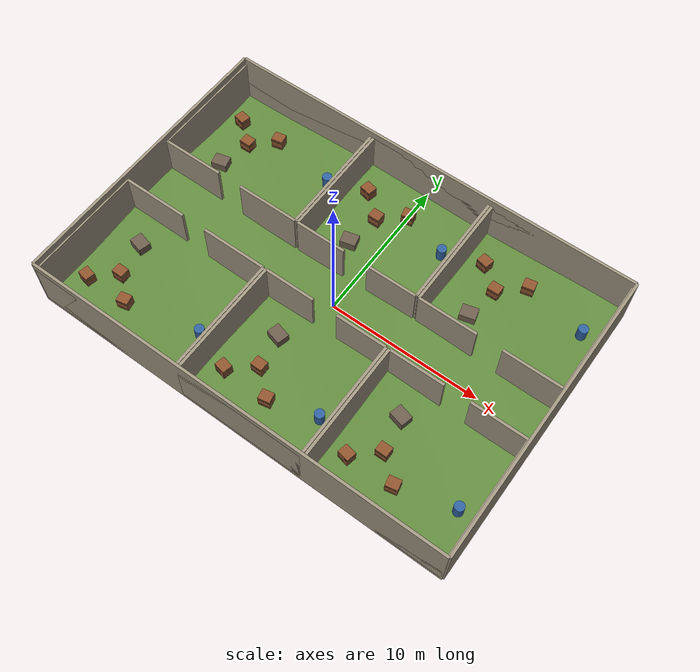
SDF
<sdf version="1.7">
 <world name="terrain_M3">
  <model name="terrain_M3_structure">
   <static>true</static>
   <link name="structure">
    <collision name="terrain_surface_collision">
     <geometry><mesh><uri>3DModel/unseen/M3/terrain_surface.stl</uri></mesh></geometry>
     <max_contacts>40</max_contacts>
     <surface>
      <friction><ode><mu>8</mu><mu2>8</mu2></ode></friction>
      <contact><ode><kp>1e7</kp><kd>1000</kd><max_vel>0.1</max_vel><min_depth>0.001</min_depth></ode></contact>
     </surface>
    </collision>
    <visual name="terrain_surface_visual">
     <geometry><mesh><uri>3DModel/unseen/M3/terrain_surface.stl</uri></mesh></geometry>
     <material><ambient>0.38 0.54 0.24 1</ambient><diffuse>0.38 0.54 0.24 1</diffuse></material>
    </visual>
    <collision name="outer_south_wall_0_collision">
     <pose>0 -9.5 1.85 0 0 0</pose>
     <geometry><box><size>28 0.18 3.9</size></box></geometry>
     <max_contacts>40</max_contacts>
     <surface>
      <friction><ode><mu>2</mu><mu2>2</mu2></ode></friction>
      <contact><ode><kp>1e7</kp><kd>1000</kd><max_vel>0.1</max_vel><min_depth>0.001</min_depth></ode></contact>
     </surface>
    </collision>
    <visual name="outer_south_wall_0_visual">
     <pose>0 -9.5 1.85 0 0 0</pose>
     <geometry><box><size>28 0.18 3.9</size></box></geometry>
     <material><ambient>0.62 0.58 0.50 1</ambient><diffuse>0.62 0.58 0.50 1</diffuse></material>
    </visual>
    <collision name="outer_north_wall_0_collision">
     <pose>0 9.5 1.85 0 0 0</pose>
     <geometry><box><size>28 0.18 3.9</size></box></geometry>
     <max_contacts>40</max_contacts>
     <surface>
      <friction><ode><mu>2</mu><mu2>2</mu2></ode></friction>
      <contact><ode><kp>1e7</kp><kd>1000</kd><max_vel>0.1</max_vel><min_depth>0.001</min_depth></ode></contact>
     </surface>
    </collision>
    <visual name="outer_north_wall_0_visual">
     <pose>0 9.5 1.85 0 0 0</pose>
     <geometry><box><size>28 0.18 3.9</size></box></geometry>
     <material><ambient>0.62 0.58 0.50 1</ambient><diffuse>0.62 0.58 0.50 1</diffuse></material>
    </visual>
    <collision name="outer_west_wall_0_collision">
     <pose>-14 0 1.85 0 0 1.57079633</pose>
     <geometry><box><size>19 0.18 3.9</size></box></geometry>
     <max_contacts>40</max_contacts>
     <surface>
      <friction><ode><mu>2</mu><mu2>2</mu2></ode></friction>
      <contact><ode><kp>1e7</kp><kd>1000</kd><max_vel>0.1</max_vel><min_depth>0.001</min_depth></ode></contact>
     </surface>
    </collision>
    <visual name="outer_west_wall_0_visual">
     <pose>-14 0 1.85 0 0 1.57079633</pose>
     <geometry><box><size>19 0.18 3.9</size></box></geometry>
     <material><ambient>0.62 0.58 0.50 1</ambient><diffuse>0.62 0.58 0.50 1</diffuse></material>
    </visual>
    <collision name="outer_east_wall_0_collision">
     <pose>14 0 1.85 0 0 1.57079633</pose>
     <geometry><box><size>19 0.18 3.9</size></box></geometry>
     <max_contacts>40</max_contacts>
     <surface>
      <friction><ode><mu>2</mu><mu2>2</mu2></ode></friction>
      <contact><ode><kp>1e7</kp><kd>1000</kd><max_vel>0.1</max_vel><min_depth>0.001</min_depth></ode></contact>
     </surface>
    </collision>
    <visual name="outer_east_wall_0_visual">
     <pose>14 0 1.85 0 0 1.57079633</pose>
     <geometry><box><size>19 0.18 3.9</size></box></geometry>
     <material><ambient>0.62 0.58 0.50 1</ambient><diffuse>0.62 0.58 0.50 1</diffuse></material>
    </visual>
    <collision name="terrain_room_1_0_south_wall_0_collision">
     <pose>-11.8625 1.8 1.745 0 0 0</pose>
     <geometry><box><size>4.075 0.18 3.15</size></box></geometry>
     <max_contacts>40</max_contacts>
     <surface>
      <friction><ode><mu>2</mu><mu2>2</mu2></ode></friction>
      <contact><ode><kp>1e7</kp><kd>1000</kd><max_vel>0.1</max_vel><min_depth>0.001</min_depth></ode></contact>
     </surface>
    </collision>
    <visual name="terrain_room_1_0_south_wall_0_visual">
     <pose>-11.8625 1.8 1.745 0 0 0</pose>
     <geometry><box><size>4.075 0.18 3.15</size></box></geometry>
     <material><ambient>0.62 0.58 0.50 1</ambient><diffuse>0.62 0.58 0.50 1</diffuse></material>
    </visual>
    <collision name="terrain_room_1_0_south_wall_1_collision">
     <pose>-6.1375 1.8 1.745 0 0 0</pose>
     <geometry><box><size>4.075 0.18 3.15</size></box></geometry>
     <max_contacts>40</max_contacts>
     <surface>
      <friction><ode><mu>2</mu><mu2>2</mu2></ode></friction>
      <contact><ode><kp>1e7</kp><kd>1000</kd><max_vel>0.1</max_vel><min_depth>0.001</min_depth></ode></contact>
     </surface>
    </collision>
    <visual name="terrain_room_1_0_south_wall_1_visual">
     <pose>-6.1375 1.8 1.745 0 0 0</pose>
     <geometry><box><size>4.075 0.18 3.15</size></box></geometry>
     <material><ambient>0.62 0.58 0.50 1</ambient><diffuse>0.62 0.58 0.50 1</diffuse></material>
    </visual>
    <collision name="terrain_room_1_0_north_wall_0_collision">
     <pose>-9 9.5 1.745 0 0 0</pose>
     <geometry><box><size>9.8 0.18 3.15</size></box></geometry>
     <max_contacts>40</max_contacts>
     <surface>
      <friction><ode><mu>2</mu><mu2>2</mu2></ode></friction>
      <contact><ode><kp>1e7</kp><kd>1000</kd><max_vel>0.1</max_vel><min_depth>0.001</min_depth></ode></contact>
     </surface>
    </collision>
    <visual name="terrain_room_1_0_north_wall_0_visual">
     <pose>-9 9.5 1.745 0 0 0</pose>
     <geometry><box><size>9.8 0.18 3.15</size></box></geometry>
     <material><ambient>0.62 0.58 0.50 1</ambient><diffuse>0.62 0.58 0.50 1</diffuse></material>
    </visual>
    <collision name="terrain_room_1_0_west_wall_0_collision">
     <pose>-13.9 5.65 1.745 0 0 1.57079633</pose>
     <geometry><box><size>7.7 0.18 3.15</size></box></geometry>
     <max_contacts>40</max_contacts>
     <surface>
      <friction><ode><mu>2</mu><mu2>2</mu2></ode></friction>
      <contact><ode><kp>1e7</kp><kd>1000</kd><max_vel>0.1</max_vel><min_depth>0.001</min_depth></ode></contact>
     </surface>
    </collision>
    <visual name="terrain_room_1_0_west_wall_0_visual">
     <pose>-13.9 5.65 1.745 0 0 1.57079633</pose>
     <geometry><box><size>7.7 0.18 3.15</size></box></geometry>
     <material><ambient>0.62 0.58 0.50 1</ambient><diffuse>0.62 0.58 0.50 1</diffuse></material>
    </visual>
    <collision name="terrain_room_1_0_east_wall_0_collision">
     <pose>-4.1 5.65 1.745 0 0 1.57079633</pose>
     <geometry><box><size>7.7 0.18 3.15</size></box></geometry>
     <max_contacts>40</max_contacts>
     <surface>
      <friction><ode><mu>2</mu><mu2>2</mu2></ode></friction>
      <contact><ode><kp>1e7</kp><kd>1000</kd><max_vel>0.1</max_vel><min_depth>0.001</min_depth></ode></contact>
     </surface>
    </collision>
    <visual name="terrain_room_1_0_east_wall_0_visual">
     <pose>-4.1 5.65 1.745 0 0 1.57079633</pose>
     <geometry><box><size>7.7 0.18 3.15</size></box></geometry>
     <material><ambient>0.62 0.58 0.50 1</ambient><diffuse>0.62 0.58 0.50 1</diffuse></material>
    </visual>
    <collision name="room_crate_1_0_0_prop_collision">
     <pose>-12.7 7.3 0.68582319 0 0 -0.2</pose>
     <geometry><box><size>0.75 0.65 0.8</size></box></geometry>
     <max_contacts>40</max_contacts>
     <surface>
      <friction><ode><mu>2</mu><mu2>2</mu2></ode></friction>
      <contact><ode><kp>1e7</kp><kd>1000</kd><max_vel>0.1</max_vel><min_depth>0.001</min_depth></ode></contact>
     </surface>
    </collision>
    <visual name="room_crate_1_0_0_prop_visual">
     <pose>-12.7 7.3 0.68582319 0 0 -0.2</pose>
     <geometry><box><size>0.75 0.65 0.8</size></box></geometry>
     <material><ambient>0.55 0.32 0.17 1</ambient><diffuse>0.55 0.32 0.17 1</diffuse></material>
    </visual>
    <visual name="room_crate_1_0_0_strap_-1_visual">
     <pose>-12.7 7.3 0.44582319 0 0 -0.2</pose>
     <geometry><box><size>0.762 0.662 0.035</size></box></geometry>
     <material><ambient>0.15 0.18 0.21 1</ambient><diffuse>0.15 0.18 0.21 1</diffuse></material>
    </visual>
    <visual name="room_crate_1_0_0_strap_1_visual">
     <pose>-12.7 7.3 0.92582319 0 0 -0.2</pose>
     <geometry><box><size>0.762 0.662 0.035</size></box></geometry>
     <material><ambient>0.15 0.18 0.21 1</ambient><diffuse>0.15 0.18 0.21 1</diffuse></material>
    </visual>
    <collision name="room_crate_1_0_1_prop_collision">
     <pose>-11.2 6 0.759078075 0 0 0</pose>
     <geometry><box><size>0.75 0.65 0.8</size></box></geometry>
     <max_contacts>40</max_contacts>
     <surface>
      <friction><ode><mu>2</mu><mu2>2</mu2></ode></friction>
      <contact><ode><kp>1e7</kp><kd>1000</kd><max_vel>0.1</max_vel><min_depth>0.001</min_depth></ode></contact>
     </surface>
    </collision>
    <visual name="room_crate_1_0_1_prop_visual">
     <pose>-11.2 6 0.759078075 0 0 0</pose>
     <geometry><box><size>0.75 0.65 0.8</size></box></geometry>
     <material><ambient>0.55 0.32 0.17 1</ambient><diffuse>0.55 0.32 0.17 1</diffuse></material>
    </visual>
    <visual name="room_crate_1_0_1_strap_-1_visual">
     <pose>-11.2 6 0.519078075 0 0 0</pose>
     <geometry><box><size>0.762 0.662 0.035</size></box></geometry>
     <material><ambient>0.15 0.18 0.21 1</ambient><diffuse>0.15 0.18 0.21 1</diffuse></material>
    </visual>
    <visual name="room_crate_1_0_1_strap_1_visual">
     <pose>-11.2 6 0.999078075 0 0 0</pose>
     <geometry><box><size>0.762 0.662 0.035</size></box></geometry>
     <material><ambient>0.15 0.18 0.21 1</ambient><diffuse>0.15 0.18 0.21 1</diffuse></material>
    </visual>
    <collision name="room_crate_1_0_2_prop_collision">
     <pose>-9.7 7.3 0.836859624 0 0 0.2</pose>
     <geometry><box><size>0.75 0.65 0.8</size></box></geometry>
     <max_contacts>40</max_contacts>
     <surface>
      <friction><ode><mu>2</mu><mu2>2</mu2></ode></friction>
      <contact><ode><kp>1e7</kp><kd>1000</kd><max_vel>0.1</max_vel><min_depth>0.001</min_depth></ode></contact>
     </surface>
    </collision>
    <visual name="room_crate_1_0_2_prop_visual">
     <pose>-9.7 7.3 0.836859624 0 0 0.2</pose>
     <geometry><box><size>0.75 0.65 0.8</size></box></geometry>
     <material><ambient>0.55 0.32 0.17 1</ambient><diffuse>0.55 0.32 0.17 1</diffuse></material>
    </visual>
    <visual name="room_crate_1_0_2_strap_-1_visual">
     <pose>-9.7 7.3 0.596859624 0 0 0.2</pose>
     <geometry><box><size>0.762 0.662 0.035</size></box></geometry>
     <material><ambient>0.15 0.18 0.21 1</ambient><diffuse>0.15 0.18 0.21 1</diffuse></material>
    </visual>
    <visual name="room_crate_1_0_2_strap_1_visual">
     <pose>-9.7 7.3 1.07685962 0 0 0.2</pose>
     <geometry><box><size>0.762 0.662 0.035</size></box></geometry>
     <material><ambient>0.15 0.18 0.21 1</ambient><diffuse>0.15 0.18 0.21 1</diffuse></material>
    </visual>
    <collision name="room_barrel_prop_1_0_collision">
     <pose>-5.2 6.4 1.21632334 0 0 0</pose>
     <geometry><cylinder><radius>0.3</radius><length>0.9</length></cylinder></geometry>
     <max_contacts>40</max_contacts>
     <surface>
      <friction><ode><mu>2</mu><mu2>2</mu2></ode></friction>
      <contact><ode><kp>1e7</kp><kd>1000</kd><max_vel>0.1</max_vel><min_depth>0.001</min_depth></ode></contact>
     </surface>
    </collision>
    <visual name="room_barrel_prop_1_0_visual">
     <pose>-5.2 6.4 1.21632334 0 0 0</pose>
     <geometry><cylinder><radius>0.3</radius><length>0.9</length></cylinder></geometry>
     <material><ambient>0.19 0.38 0.62 1</ambient><diffuse>0.19 0.38 0.62 1</diffuse></material>
    </visual>
    <collision name="room_block_obstacle_1_0_collision">
     <pose>-11.6 3.8 0.799242574 0 0 0.25</pose>
     <geometry><box><size>1 0.8 0.6</size></box></geometry>
     <max_contacts>40</max_contacts>
     <surface>
      <friction><ode><mu>2</mu><mu2>2</mu2></ode></friction>
      <contact><ode><kp>1e7</kp><kd>1000</kd><max_vel>0.1</max_vel><min_depth>0.001</min_depth></ode></contact>
     </surface>
    </collision>
    <visual name="room_block_obstacle_1_0_visual">
     <pose>-11.6 3.8 0.799242574 0 0 0.25</pose>
     <geometry><box><size>1 0.8 0.6</size></box></geometry>
     <material><ambient>0.42 0.36 0.30 1</ambient><diffuse>0.42 0.36 0.30 1</diffuse></material>
    </visual>
    <collision name="terrain_room_1_1_south_wall_0_collision">
     <pose>-2.2375 1.8 1.745 0 0 0</pose>
     <geometry><box><size>3.325 0.18 3.15</size></box></geometry>
     <max_contacts>40</max_contacts>
     <surface>
      <friction><ode><mu>2</mu><mu2>2</mu2></ode></friction>
      <contact><ode><kp>1e7</kp><kd>1000</kd><max_vel>0.1</max_vel><min_depth>0.001</min_depth></ode></contact>
     </surface>
    </collision>
    <visual name="terrain_room_1_1_south_wall_0_visual">
     <pose>-2.2375 1.8 1.745 0 0 0</pose>
     <geometry><box><size>3.325 0.18 3.15</size></box></geometry>
     <material><ambient>0.62 0.58 0.50 1</ambient><diffuse>0.62 0.58 0.50 1</diffuse></material>
    </visual>
    <collision name="terrain_room_1_1_south_wall_1_collision">
     <pose>2.7375 1.8 1.745 0 0 0</pose>
     <geometry><box><size>3.325 0.18 3.15</size></box></geometry>
     <max_contacts>40</max_contacts>
     <surface>
      <friction><ode><mu>2</mu><mu2>2</mu2></ode></friction>
      <contact><ode><kp>1e7</kp><kd>1000</kd><max_vel>0.1</max_vel><min_depth>0.001</min_depth></ode></contact>
     </surface>
    </collision>
    <visual name="terrain_room_1_1_south_wall_1_visual">
     <pose>2.7375 1.8 1.745 0 0 0</pose>
     <geometry><box><size>3.325 0.18 3.15</size></box></geometry>
     <material><ambient>0.62 0.58 0.50 1</ambient><diffuse>0.62 0.58 0.50 1</diffuse></material>
    </visual>
    <collision name="terrain_room_1_1_north_wall_0_collision">
     <pose>0.25 9.5 1.745 0 0 0</pose>
     <geometry><box><size>8.3 0.18 3.15</size></box></geometry>
     <max_contacts>40</max_contacts>
     <surface>
      <friction><ode><mu>2</mu><mu2>2</mu2></ode></friction>
      <contact><ode><kp>1e7</kp><kd>1000</kd><max_vel>0.1</max_vel><min_depth>0.001</min_depth></ode></contact>
     </surface>
    </collision>
    <visual name="terrain_room_1_1_north_wall_0_visual">
     <pose>0.25 9.5 1.745 0 0 0</pose>
     <geometry><box><size>8.3 0.18 3.15</size></box></geometry>
     <material><ambient>0.62 0.58 0.50 1</ambient><diffuse>0.62 0.58 0.50 1</diffuse></material>
    </visual>
    <collision name="terrain_room_1_1_west_wall_0_collision">
     <pose>-3.9 5.65 1.745 0 0 1.57079633</pose>
     <geometry><box><size>7.7 0.18 3.15</size></box></geometry>
     <max_contacts>40</max_contacts>
     <surface>
      <friction><ode><mu>2</mu><mu2>2</mu2></ode></friction>
      <contact><ode><kp>1e7</kp><kd>1000</kd><max_vel>0.1</max_vel><min_depth>0.001</min_depth></ode></contact>
     </surface>
    </collision>
    <visual name="terrain_room_1_1_west_wall_0_visual">
     <pose>-3.9 5.65 1.745 0 0 1.57079633</pose>
     <geometry><box><size>7.7 0.18 3.15</size></box></geometry>
     <material><ambient>0.62 0.58 0.50 1</ambient><diffuse>0.62 0.58 0.50 1</diffuse></material>
    </visual>
    <collision name="terrain_room_1_1_east_wall_0_collision">
     <pose>4.4 5.65 1.745 0 0 1.57079633</pose>
     <geometry><box><size>7.7 0.18 3.15</size></box></geometry>
     <max_contacts>40</max_contacts>
     <surface>
      <friction><ode><mu>2</mu><mu2>2</mu2></ode></friction>
      <contact><ode><kp>1e7</kp><kd>1000</kd><max_vel>0.1</max_vel><min_depth>0.001</min_depth></ode></contact>
     </surface>
    </collision>
    <visual name="terrain_room_1_1_east_wall_0_visual">
     <pose>4.4 5.65 1.745 0 0 1.57079633</pose>
     <geometry><box><size>7.7 0.18 3.15</size></box></geometry>
     <material><ambient>0.62 0.58 0.50 1</ambient><diffuse>0.62 0.58 0.50 1</diffuse></material>
    </visual>
    <collision name="room_crate_1_1_0_prop_collision">
     <pose>-2.7 7.3 1.18072693 0 0 -0.2</pose>
     <geometry><box><size>0.75 0.65 0.8</size></box></geometry>
     <max_contacts>40</max_contacts>
     <surface>
      <friction><ode><mu>2</mu><mu2>2</mu2></ode></friction>
      <contact><ode><kp>1e7</kp><kd>1000</kd><max_vel>0.1</max_vel><min_depth>0.001</min_depth></ode></contact>
     </surface>
    </collision>
    <visual name="room_crate_1_1_0_prop_visual">
     <pose>-2.7 7.3 1.18072693 0 0 -0.2</pose>
     <geometry><box><size>0.75 0.65 0.8</size></box></geometry>
     <material><ambient>0.55 0.32 0.17 1</ambient><diffuse>0.55 0.32 0.17 1</diffuse></material>
    </visual>
    <visual name="room_crate_1_1_0_strap_-1_visual">
     <pose>-2.7 7.3 0.940726934 0 0 -0.2</pose>
     <geometry><box><size>0.762 0.662 0.035</size></box></geometry>
     <material><ambient>0.15 0.18 0.21 1</ambient><diffuse>0.15 0.18 0.21 1</diffuse></material>
    </visual>
    <visual name="room_crate_1_1_0_strap_1_visual">
     <pose>-2.7 7.3 1.42072693 0 0 -0.2</pose>
     <geometry><box><size>0.762 0.662 0.035</size></box></geometry>
     <material><ambient>0.15 0.18 0.21 1</ambient><diffuse>0.15 0.18 0.21 1</diffuse></material>
    </visual>
    <collision name="room_crate_1_1_1_prop_collision">
     <pose>-1.2 6 1.09067439 0 0 0</pose>
     <geometry><box><size>0.75 0.65 0.8</size></box></geometry>
     <max_contacts>40</max_contacts>
     <surface>
      <friction><ode><mu>2</mu><mu2>2</mu2></ode></friction>
      <contact><ode><kp>1e7</kp><kd>1000</kd><max_vel>0.1</max_vel><min_depth>0.001</min_depth></ode></contact>
     </surface>
    </collision>
    <visual name="room_crate_1_1_1_prop_visual">
     <pose>-1.2 6 1.09067439 0 0 0</pose>
     <geometry><box><size>0.75 0.65 0.8</size></box></geometry>
     <material><ambient>0.55 0.32 0.17 1</ambient><diffuse>0.55 0.32 0.17 1</diffuse></material>
    </visual>
    <visual name="room_crate_1_1_1_strap_-1_visual">
     <pose>-1.2 6 0.850674393 0 0 0</pose>
     <geometry><box><size>0.762 0.662 0.035</size></box></geometry>
     <material><ambient>0.15 0.18 0.21 1</ambient><diffuse>0.15 0.18 0.21 1</diffuse></material>
    </visual>
    <visual name="room_crate_1_1_1_strap_1_visual">
     <pose>-1.2 6 1.33067439 0 0 0</pose>
     <geometry><box><size>0.762 0.662 0.035</size></box></geometry>
     <material><ambient>0.15 0.18 0.21 1</ambient><diffuse>0.15 0.18 0.21 1</diffuse></material>
    </visual>
    <collision name="room_crate_1_1_2_prop_collision">
     <pose>0.3 7.3 0.998318562 0 0 0.2</pose>
     <geometry><box><size>0.75 0.65 0.8</size></box></geometry>
     <max_contacts>40</max_contacts>
     <surface>
      <friction><ode><mu>2</mu><mu2>2</mu2></ode></friction>
      <contact><ode><kp>1e7</kp><kd>1000</kd><max_vel>0.1</max_vel><min_depth>0.001</min_depth></ode></contact>
     </surface>
    </collision>
    <visual name="room_crate_1_1_2_prop_visual">
     <pose>0.3 7.3 0.998318562 0 0 0.2</pose>
     <geometry><box><size>0.75 0.65 0.8</size></box></geometry>
     <material><ambient>0.55 0.32 0.17 1</ambient><diffuse>0.55 0.32 0.17 1</diffuse></material>
    </visual>
    <visual name="room_crate_1_1_2_strap_-1_visual">
     <pose>0.3 7.3 0.758318562 0 0 0.2</pose>
     <geometry><box><size>0.762 0.662 0.035</size></box></geometry>
     <material><ambient>0.15 0.18 0.21 1</ambient><diffuse>0.15 0.18 0.21 1</diffuse></material>
    </visual>
    <visual name="room_crate_1_1_2_strap_1_visual">
     <pose>0.3 7.3 1.23831856 0 0 0.2</pose>
     <geometry><box><size>0.762 0.662 0.035</size></box></geometry>
     <material><ambient>0.15 0.18 0.21 1</ambient><diffuse>0.15 0.18 0.21 1</diffuse></material>
    </visual>
    <collision name="room_barrel_prop_1_1_collision">
     <pose>3.3 6.4 0.906111311 0 0 0</pose>
     <geometry><cylinder><radius>0.3</radius><length>0.9</length></cylinder></geometry>
     <max_contacts>40</max_contacts>
     <surface>
      <friction><ode><mu>2</mu><mu2>2</mu2></ode></friction>
      <contact><ode><kp>1e7</kp><kd>1000</kd><max_vel>0.1</max_vel><min_depth>0.001</min_depth></ode></contact>
     </surface>
    </collision>
    <visual name="room_barrel_prop_1_1_visual">
     <pose>3.3 6.4 0.906111311 0 0 0</pose>
     <geometry><cylinder><radius>0.3</radius><length>0.9</length></cylinder></geometry>
     <material><ambient>0.19 0.38 0.62 1</ambient><diffuse>0.19 0.38 0.62 1</diffuse></material>
    </visual>
    <collision name="room_block_obstacle_1_1_collision">
     <pose>-1.6 3.8 0.915588072 0 0 0.25</pose>
     <geometry><box><size>1 0.8 0.6</size></box></geometry>
     <max_contacts>40</max_contacts>
     <surface>
      <friction><ode><mu>2</mu><mu2>2</mu2></ode></friction>
      <contact><ode><kp>1e7</kp><kd>1000</kd><max_vel>0.1</max_vel><min_depth>0.001</min_depth></ode></contact>
     </surface>
    </collision>
    <visual name="room_block_obstacle_1_1_visual">
     <pose>-1.6 3.8 0.915588072 0 0 0.25</pose>
     <geometry><box><size>1 0.8 0.6</size></box></geometry>
     <material><ambient>0.42 0.36 0.30 1</ambient><diffuse>0.42 0.36 0.30 1</diffuse></material>
    </visual>
    <collision name="terrain_room_1_2_south_wall_0_collision">
     <pose>6.5125 1.8 1.745 0 0 0</pose>
     <geometry><box><size>3.825 0.18 3.15</size></box></geometry>
     <max_contacts>40</max_contacts>
     <surface>
      <friction><ode><mu>2</mu><mu2>2</mu2></ode></friction>
      <contact><ode><kp>1e7</kp><kd>1000</kd><max_vel>0.1</max_vel><min_depth>0.001</min_depth></ode></contact>
     </surface>
    </collision>
    <visual name="terrain_room_1_2_south_wall_0_visual">
     <pose>6.5125 1.8 1.745 0 0 0</pose>
     <geometry><box><size>3.825 0.18 3.15</size></box></geometry>
     <material><ambient>0.62 0.58 0.50 1</ambient><diffuse>0.62 0.58 0.50 1</diffuse></material>
    </visual>
    <collision name="terrain_room_1_2_south_wall_1_collision">
     <pose>11.9875 1.8 1.745 0 0 0</pose>
     <geometry><box><size>3.825 0.18 3.15</size></box></geometry>
     <max_contacts>40</max_contacts>
     <surface>
      <friction><ode><mu>2</mu><mu2>2</mu2></ode></friction>
      <contact><ode><kp>1e7</kp><kd>1000</kd><max_vel>0.1</max_vel><min_depth>0.001</min_depth></ode></contact>
     </surface>
    </collision>
    <visual name="terrain_room_1_2_south_wall_1_visual">
     <pose>11.9875 1.8 1.745 0 0 0</pose>
     <geometry><box><size>3.825 0.18 3.15</size></box></geometry>
     <material><ambient>0.62 0.58 0.50 1</ambient><diffuse>0.62 0.58 0.50 1</diffuse></material>
    </visual>
    <collision name="terrain_room_1_2_north_wall_0_collision">
     <pose>9.25 9.5 1.745 0 0 0</pose>
     <geometry><box><size>9.3 0.18 3.15</size></box></geometry>
     <max_contacts>40</max_contacts>
     <surface>
      <friction><ode><mu>2</mu><mu2>2</mu2></ode></friction>
      <contact><ode><kp>1e7</kp><kd>1000</kd><max_vel>0.1</max_vel><min_depth>0.001</min_depth></ode></contact>
     </surface>
    </collision>
    <visual name="terrain_room_1_2_north_wall_0_visual">
     <pose>9.25 9.5 1.745 0 0 0</pose>
     <geometry><box><size>9.3 0.18 3.15</size></box></geometry>
     <material><ambient>0.62 0.58 0.50 1</ambient><diffuse>0.62 0.58 0.50 1</diffuse></material>
    </visual>
    <collision name="terrain_room_1_2_west_wall_0_collision">
     <pose>4.6 5.65 1.745 0 0 1.57079633</pose>
     <geometry><box><size>7.7 0.18 3.15</size></box></geometry>
     <max_contacts>40</max_contacts>
     <surface>
      <friction><ode><mu>2</mu><mu2>2</mu2></ode></friction>
      <contact><ode><kp>1e7</kp><kd>1000</kd><max_vel>0.1</max_vel><min_depth>0.001</min_depth></ode></contact>
     </surface>
    </collision>
    <visual name="terrain_room_1_2_west_wall_0_visual">
     <pose>4.6 5.65 1.745 0 0 1.57079633</pose>
     <geometry><box><size>7.7 0.18 3.15</size></box></geometry>
     <material><ambient>0.62 0.58 0.50 1</ambient><diffuse>0.62 0.58 0.50 1</diffuse></material>
    </visual>
    <collision name="terrain_room_1_2_east_wall_0_collision">
     <pose>13.9 5.65 1.745 0 0 1.57079633</pose>
     <geometry><box><size>7.7 0.18 3.15</size></box></geometry>
     <max_contacts>40</max_contacts>
     <surface>
      <friction><ode><mu>2</mu><mu2>2</mu2></ode></friction>
      <contact><ode><kp>1e7</kp><kd>1000</kd><max_vel>0.1</max_vel><min_depth>0.001</min_depth></ode></contact>
     </surface>
    </collision>
    <visual name="terrain_room_1_2_east_wall_0_visual">
     <pose>13.9 5.65 1.745 0 0 1.57079633</pose>
     <geometry><box><size>7.7 0.18 3.15</size></box></geometry>
     <material><ambient>0.62 0.58 0.50 1</ambient><diffuse>0.62 0.58 0.50 1</diffuse></material>
    </visual>
    <collision name="room_crate_1_2_0_prop_collision">
     <pose>5.8 7.3 0.887955858 0 0 -0.2</pose>
     <geometry><box><size>0.75 0.65 0.8</size></box></geometry>
     <max_contacts>40</max_contacts>
     <surface>
      <friction><ode><mu>2</mu><mu2>2</mu2></ode></friction>
      <contact><ode><kp>1e7</kp><kd>1000</kd><max_vel>0.1</max_vel><min_depth>0.001</min_depth></ode></contact>
     </surface>
    </collision>
    <visual name="room_crate_1_2_0_prop_visual">
     <pose>5.8 7.3 0.887955858 0 0 -0.2</pose>
     <geometry><box><size>0.75 0.65 0.8</size></box></geometry>
     <material><ambient>0.55 0.32 0.17 1</ambient><diffuse>0.55 0.32 0.17 1</diffuse></material>
    </visual>
    <visual name="room_crate_1_2_0_strap_-1_visual">
     <pose>5.8 7.3 0.647955858 0 0 -0.2</pose>
     <geometry><box><size>0.762 0.662 0.035</size></box></geometry>
     <material><ambient>0.15 0.18 0.21 1</ambient><diffuse>0.15 0.18 0.21 1</diffuse></material>
    </visual>
    <visual name="room_crate_1_2_0_strap_1_visual">
     <pose>5.8 7.3 1.12795586 0 0 -0.2</pose>
     <geometry><box><size>0.762 0.662 0.035</size></box></geometry>
     <material><ambient>0.15 0.18 0.21 1</ambient><diffuse>0.15 0.18 0.21 1</diffuse></material>
    </visual>
    <collision name="room_crate_1_2_1_prop_collision">
     <pose>7.3 6 1.0053489 0 0 0</pose>
     <geometry><box><size>0.75 0.65 0.8</size></box></geometry>
     <max_contacts>40</max_contacts>
     <surface>
      <friction><ode><mu>2</mu><mu2>2</mu2></ode></friction>
      <contact><ode><kp>1e7</kp><kd>1000</kd><max_vel>0.1</max_vel><min_depth>0.001</min_depth></ode></contact>
     </surface>
    </collision>
    <visual name="room_crate_1_2_1_prop_visual">
     <pose>7.3 6 1.0053489 0 0 0</pose>
     <geometry><box><size>0.75 0.65 0.8</size></box></geometry>
     <material><ambient>0.55 0.32 0.17 1</ambient><diffuse>0.55 0.32 0.17 1</diffuse></material>
    </visual>
    <visual name="room_crate_1_2_1_strap_-1_visual">
     <pose>7.3 6 0.765348897 0 0 0</pose>
     <geometry><box><size>0.762 0.662 0.035</size></box></geometry>
     <material><ambient>0.15 0.18 0.21 1</ambient><diffuse>0.15 0.18 0.21 1</diffuse></material>
    </visual>
    <visual name="room_crate_1_2_1_strap_1_visual">
     <pose>7.3 6 1.2453489 0 0 0</pose>
     <geometry><box><size>0.762 0.662 0.035</size></box></geometry>
     <material><ambient>0.15 0.18 0.21 1</ambient><diffuse>0.15 0.18 0.21 1</diffuse></material>
    </visual>
    <collision name="room_crate_1_2_2_prop_collision">
     <pose>8.8 7.3 1.12501347 0 0 0.2</pose>
     <geometry><box><size>0.75 0.65 0.8</size></box></geometry>
     <max_contacts>40</max_contacts>
     <surface>
      <friction><ode><mu>2</mu><mu2>2</mu2></ode></friction>
      <contact><ode><kp>1e7</kp><kd>1000</kd><max_vel>0.1</max_vel><min_depth>0.001</min_depth></ode></contact>
     </surface>
    </collision>
    <visual name="room_crate_1_2_2_prop_visual">
     <pose>8.8 7.3 1.12501347 0 0 0.2</pose>
     <geometry><box><size>0.75 0.65 0.8</size></box></geometry>
     <material><ambient>0.55 0.32 0.17 1</ambient><diffuse>0.55 0.32 0.17 1</diffuse></material>
    </visual>
    <visual name="room_crate_1_2_2_strap_-1_visual">
     <pose>8.8 7.3 0.885013471 0 0 0.2</pose>
     <geometry><box><size>0.762 0.662 0.035</size></box></geometry>
     <material><ambient>0.15 0.18 0.21 1</ambient><diffuse>0.15 0.18 0.21 1</diffuse></material>
    </visual>
    <visual name="room_crate_1_2_2_strap_1_visual">
     <pose>8.8 7.3 1.36501347 0 0 0.2</pose>
     <geometry><box><size>0.762 0.662 0.035</size></box></geometry>
     <material><ambient>0.15 0.18 0.21 1</ambient><diffuse>0.15 0.18 0.21 1</diffuse></material>
    </visual>
    <collision name="room_barrel_prop_1_2_collision">
     <pose>12.8 6.4 1.39109316 0 0 0</pose>
     <geometry><cylinder><radius>0.3</radius><length>0.9</length></cylinder></geometry>
     <max_contacts>40</max_contacts>
     <surface>
      <friction><ode><mu>2</mu><mu2>2</mu2></ode></friction>
      <contact><ode><kp>1e7</kp><kd>1000</kd><max_vel>0.1</max_vel><min_depth>0.001</min_depth></ode></contact>
     </surface>
    </collision>
    <visual name="room_barrel_prop_1_2_visual">
     <pose>12.8 6.4 1.39109316 0 0 0</pose>
     <geometry><cylinder><radius>0.3</radius><length>0.9</length></cylinder></geometry>
     <material><ambient>0.19 0.38 0.62 1</ambient><diffuse>0.19 0.38 0.62 1</diffuse></material>
    </visual>
    <collision name="room_block_obstacle_1_2_collision">
     <pose>6.9 3.8 0.972209387 0 0 0.25</pose>
     <geometry><box><size>1 0.8 0.6</size></box></geometry>
     <max_contacts>40</max_contacts>
     <surface>
      <friction><ode><mu>2</mu><mu2>2</mu2></ode></friction>
      <contact><ode><kp>1e7</kp><kd>1000</kd><max_vel>0.1</max_vel><min_depth>0.001</min_depth></ode></contact>
     </surface>
    </collision>
    <visual name="room_block_obstacle_1_2_visual">
     <pose>6.9 3.8 0.972209387 0 0 0.25</pose>
     <geometry><box><size>1 0.8 0.6</size></box></geometry>
     <material><ambient>0.42 0.36 0.30 1</ambient><diffuse>0.42 0.36 0.30 1</diffuse></material>
    </visual>
    <collision name="terrain_room_-1_0_south_wall_0_collision">
     <pose>-8.75 -9.5 1.745 0 0 0</pose>
     <geometry><box><size>10.3 0.18 3.15</size></box></geometry>
     <max_contacts>40</max_contacts>
     <surface>
      <friction><ode><mu>2</mu><mu2>2</mu2></ode></friction>
      <contact><ode><kp>1e7</kp><kd>1000</kd><max_vel>0.1</max_vel><min_depth>0.001</min_depth></ode></contact>
     </surface>
    </collision>
    <visual name="terrain_room_-1_0_south_wall_0_visual">
     <pose>-8.75 -9.5 1.745 0 0 0</pose>
     <geometry><box><size>10.3 0.18 3.15</size></box></geometry>
     <material><ambient>0.62 0.58 0.50 1</ambient><diffuse>0.62 0.58 0.50 1</diffuse></material>
    </visual>
    <collision name="terrain_room_-1_0_north_wall_0_collision">
     <pose>-11.7375 -1.8 1.745 0 0 0</pose>
     <geometry><box><size>4.325 0.18 3.15</size></box></geometry>
     <max_contacts>40</max_contacts>
     <surface>
      <friction><ode><mu>2</mu><mu2>2</mu2></ode></friction>
      <contact><ode><kp>1e7</kp><kd>1000</kd><max_vel>0.1</max_vel><min_depth>0.001</min_depth></ode></contact>
     </surface>
    </collision>
    <visual name="terrain_room_-1_0_north_wall_0_visual">
     <pose>-11.7375 -1.8 1.745 0 0 0</pose>
     <geometry><box><size>4.325 0.18 3.15</size></box></geometry>
     <material><ambient>0.62 0.58 0.50 1</ambient><diffuse>0.62 0.58 0.50 1</diffuse></material>
    </visual>
    <collision name="terrain_room_-1_0_north_wall_1_collision">
     <pose>-5.7625 -1.8 1.745 0 0 0</pose>
     <geometry><box><size>4.325 0.18 3.15</size></box></geometry>
     <max_contacts>40</max_contacts>
     <surface>
      <friction><ode><mu>2</mu><mu2>2</mu2></ode></friction>
      <contact><ode><kp>1e7</kp><kd>1000</kd><max_vel>0.1</max_vel><min_depth>0.001</min_depth></ode></contact>
     </surface>
    </collision>
    <visual name="terrain_room_-1_0_north_wall_1_visual">
     <pose>-5.7625 -1.8 1.745 0 0 0</pose>
     <geometry><box><size>4.325 0.18 3.15</size></box></geometry>
     <material><ambient>0.62 0.58 0.50 1</ambient><diffuse>0.62 0.58 0.50 1</diffuse></material>
    </visual>
    <collision name="terrain_room_-1_0_west_wall_0_collision">
     <pose>-13.9 -5.65 1.745 0 0 1.57079633</pose>
     <geometry><box><size>7.7 0.18 3.15</size></box></geometry>
     <max_contacts>40</max_contacts>
     <surface>
      <friction><ode><mu>2</mu><mu2>2</mu2></ode></friction>
      <contact><ode><kp>1e7</kp><kd>1000</kd><max_vel>0.1</max_vel><min_depth>0.001</min_depth></ode></contact>
     </surface>
    </collision>
    <visual name="terrain_room_-1_0_west_wall_0_visual">
     <pose>-13.9 -5.65 1.745 0 0 1.57079633</pose>
     <geometry><box><size>7.7 0.18 3.15</size></box></geometry>
     <material><ambient>0.62 0.58 0.50 1</ambient><diffuse>0.62 0.58 0.50 1</diffuse></material>
    </visual>
    <collision name="terrain_room_-1_0_east_wall_0_collision">
     <pose>-3.6 -5.65 1.745 0 0 1.57079633</pose>
     <geometry><box><size>7.7 0.18 3.15</size></box></geometry>
     <max_contacts>40</max_contacts>
     <surface>
      <friction><ode><mu>2</mu><mu2>2</mu2></ode></friction>
      <contact><ode><kp>1e7</kp><kd>1000</kd><max_vel>0.1</max_vel><min_depth>0.001</min_depth></ode></contact>
     </surface>
    </collision>
    <visual name="terrain_room_-1_0_east_wall_0_visual">
     <pose>-3.6 -5.65 1.745 0 0 1.57079633</pose>
     <geometry><box><size>7.7 0.18 3.15</size></box></geometry>
     <material><ambient>0.62 0.58 0.50 1</ambient><diffuse>0.62 0.58 0.50 1</diffuse></material>
    </visual>
    <collision name="room_crate_-1_0_0_prop_collision">
     <pose>-12.7 -7.3 0.68582319 0 0 -0.2</pose>
     <geometry><box><size>0.75 0.65 0.8</size></box></geometry>
     <max_contacts>40</max_contacts>
     <surface>
      <friction><ode><mu>2</mu><mu2>2</mu2></ode></friction>
      <contact><ode><kp>1e7</kp><kd>1000</kd><max_vel>0.1</max_vel><min_depth>0.001</min_depth></ode></contact>
     </surface>
    </collision>
    <visual name="room_crate_-1_0_0_prop_visual">
     <pose>-12.7 -7.3 0.68582319 0 0 -0.2</pose>
     <geometry><box><size>0.75 0.65 0.8</size></box></geometry>
     <material><ambient>0.55 0.32 0.17 1</ambient><diffuse>0.55 0.32 0.17 1</diffuse></material>
    </visual>
    <visual name="room_crate_-1_0_0_strap_-1_visual">
     <pose>-12.7 -7.3 0.44582319 0 0 -0.2</pose>
     <geometry><box><size>0.762 0.662 0.035</size></box></geometry>
     <material><ambient>0.15 0.18 0.21 1</ambient><diffuse>0.15 0.18 0.21 1</diffuse></material>
    </visual>
    <visual name="room_crate_-1_0_0_strap_1_visual">
     <pose>-12.7 -7.3 0.92582319 0 0 -0.2</pose>
     <geometry><box><size>0.762 0.662 0.035</size></box></geometry>
     <material><ambient>0.15 0.18 0.21 1</ambient><diffuse>0.15 0.18 0.21 1</diffuse></material>
    </visual>
    <collision name="room_crate_-1_0_1_prop_collision">
     <pose>-11.2 -6 0.759078075 0 0 0</pose>
     <geometry><box><size>0.75 0.65 0.8</size></box></geometry>
     <max_contacts>40</max_contacts>
     <surface>
      <friction><ode><mu>2</mu><mu2>2</mu2></ode></friction>
      <contact><ode><kp>1e7</kp><kd>1000</kd><max_vel>0.1</max_vel><min_depth>0.001</min_depth></ode></contact>
     </surface>
    </collision>
    <visual name="room_crate_-1_0_1_prop_visual">
     <pose>-11.2 -6 0.759078075 0 0 0</pose>
     <geometry><box><size>0.75 0.65 0.8</size></box></geometry>
     <material><ambient>0.55 0.32 0.17 1</ambient><diffuse>0.55 0.32 0.17 1</diffuse></material>
    </visual>
    <visual name="room_crate_-1_0_1_strap_-1_visual">
     <pose>-11.2 -6 0.519078075 0 0 0</pose>
     <geometry><box><size>0.762 0.662 0.035</size></box></geometry>
     <material><ambient>0.15 0.18 0.21 1</ambient><diffuse>0.15 0.18 0.21 1</diffuse></material>
    </visual>
    <visual name="room_crate_-1_0_1_strap_1_visual">
     <pose>-11.2 -6 0.999078075 0 0 0</pose>
     <geometry><box><size>0.762 0.662 0.035</size></box></geometry>
     <material><ambient>0.15 0.18 0.21 1</ambient><diffuse>0.15 0.18 0.21 1</diffuse></material>
    </visual>
    <collision name="room_crate_-1_0_2_prop_collision">
     <pose>-9.7 -7.3 0.836859624 0 0 0.2</pose>
     <geometry><box><size>0.75 0.65 0.8</size></box></geometry>
     <max_contacts>40</max_contacts>
     <surface>
      <friction><ode><mu>2</mu><mu2>2</mu2></ode></friction>
      <contact><ode><kp>1e7</kp><kd>1000</kd><max_vel>0.1</max_vel><min_depth>0.001</min_depth></ode></contact>
     </surface>
    </collision>
    <visual name="room_crate_-1_0_2_prop_visual">
     <pose>-9.7 -7.3 0.836859624 0 0 0.2</pose>
     <geometry><box><size>0.75 0.65 0.8</size></box></geometry>
     <material><ambient>0.55 0.32 0.17 1</ambient><diffuse>0.55 0.32 0.17 1</diffuse></material>
    </visual>
    <visual name="room_crate_-1_0_2_strap_-1_visual">
     <pose>-9.7 -7.3 0.596859624 0 0 0.2</pose>
     <geometry><box><size>0.762 0.662 0.035</size></box></geometry>
     <material><ambient>0.15 0.18 0.21 1</ambient><diffuse>0.15 0.18 0.21 1</diffuse></material>
    </visual>
    <visual name="room_crate_-1_0_2_strap_1_visual">
     <pose>-9.7 -7.3 1.07685962 0 0 0.2</pose>
     <geometry><box><size>0.762 0.662 0.035</size></box></geometry>
     <material><ambient>0.15 0.18 0.21 1</ambient><diffuse>0.15 0.18 0.21 1</diffuse></material>
    </visual>
    <collision name="room_barrel_prop_-1_0_collision">
     <pose>-4.7 -6.4 1.23070868 0 0 0</pose>
     <geometry><cylinder><radius>0.3</radius><length>0.9</length></cylinder></geometry>
     <max_contacts>40</max_contacts>
     <surface>
      <friction><ode><mu>2</mu><mu2>2</mu2></ode></friction>
      <contact><ode><kp>1e7</kp><kd>1000</kd><max_vel>0.1</max_vel><min_depth>0.001</min_depth></ode></contact>
     </surface>
    </collision>
    <visual name="room_barrel_prop_-1_0_visual">
     <pose>-4.7 -6.4 1.23070868 0 0 0</pose>
     <geometry><cylinder><radius>0.3</radius><length>0.9</length></cylinder></geometry>
     <material><ambient>0.19 0.38 0.62 1</ambient><diffuse>0.19 0.38 0.62 1</diffuse></material>
    </visual>
    <collision name="room_block_obstacle_-1_0_collision">
     <pose>-11.6 -3.8 0.799242574 0 0 -0.25</pose>
     <geometry><box><size>1 0.8 0.6</size></box></geometry>
     <max_contacts>40</max_contacts>
     <surface>
      <friction><ode><mu>2</mu><mu2>2</mu2></ode></friction>
      <contact><ode><kp>1e7</kp><kd>1000</kd><max_vel>0.1</max_vel><min_depth>0.001</min_depth></ode></contact>
     </surface>
    </collision>
    <visual name="room_block_obstacle_-1_0_visual">
     <pose>-11.6 -3.8 0.799242574 0 0 -0.25</pose>
     <geometry><box><size>1 0.8 0.6</size></box></geometry>
     <material><ambient>0.42 0.36 0.30 1</ambient><diffuse>0.42 0.36 0.30 1</diffuse></material>
    </visual>
    <collision name="terrain_room_-1_1_south_wall_0_collision">
     <pose>0.75 -9.5 1.745 0 0 0</pose>
     <geometry><box><size>8.3 0.18 3.15</size></box></geometry>
     <max_contacts>40</max_contacts>
     <surface>
      <friction><ode><mu>2</mu><mu2>2</mu2></ode></friction>
      <contact><ode><kp>1e7</kp><kd>1000</kd><max_vel>0.1</max_vel><min_depth>0.001</min_depth></ode></contact>
     </surface>
    </collision>
    <visual name="terrain_room_-1_1_south_wall_0_visual">
     <pose>0.75 -9.5 1.745 0 0 0</pose>
     <geometry><box><size>8.3 0.18 3.15</size></box></geometry>
     <material><ambient>0.62 0.58 0.50 1</ambient><diffuse>0.62 0.58 0.50 1</diffuse></material>
    </visual>
    <collision name="terrain_room_-1_1_north_wall_0_collision">
     <pose>-1.7375 -1.8 1.745 0 0 0</pose>
     <geometry><box><size>3.325 0.18 3.15</size></box></geometry>
     <max_contacts>40</max_contacts>
     <surface>
      <friction><ode><mu>2</mu><mu2>2</mu2></ode></friction>
      <contact><ode><kp>1e7</kp><kd>1000</kd><max_vel>0.1</max_vel><min_depth>0.001</min_depth></ode></contact>
     </surface>
    </collision>
    <visual name="terrain_room_-1_1_north_wall_0_visual">
     <pose>-1.7375 -1.8 1.745 0 0 0</pose>
     <geometry><box><size>3.325 0.18 3.15</size></box></geometry>
     <material><ambient>0.62 0.58 0.50 1</ambient><diffuse>0.62 0.58 0.50 1</diffuse></material>
    </visual>
    <collision name="terrain_room_-1_1_north_wall_1_collision">
     <pose>3.2375 -1.8 1.745 0 0 0</pose>
     <geometry><box><size>3.325 0.18 3.15</size></box></geometry>
     <max_contacts>40</max_contacts>
     <surface>
      <friction><ode><mu>2</mu><mu2>2</mu2></ode></friction>
      <contact><ode><kp>1e7</kp><kd>1000</kd><max_vel>0.1</max_vel><min_depth>0.001</min_depth></ode></contact>
     </surface>
    </collision>
    <visual name="terrain_room_-1_1_north_wall_1_visual">
     <pose>3.2375 -1.8 1.745 0 0 0</pose>
     <geometry><box><size>3.325 0.18 3.15</size></box></geometry>
     <material><ambient>0.62 0.58 0.50 1</ambient><diffuse>0.62 0.58 0.50 1</diffuse></material>
    </visual>
    <collision name="terrain_room_-1_1_west_wall_0_collision">
     <pose>-3.4 -5.65 1.745 0 0 1.57079633</pose>
     <geometry><box><size>7.7 0.18 3.15</size></box></geometry>
     <max_contacts>40</max_contacts>
     <surface>
      <friction><ode><mu>2</mu><mu2>2</mu2></ode></friction>
      <contact><ode><kp>1e7</kp><kd>1000</kd><max_vel>0.1</max_vel><min_depth>0.001</min_depth></ode></contact>
     </surface>
    </collision>
    <visual name="terrain_room_-1_1_west_wall_0_visual">
     <pose>-3.4 -5.65 1.745 0 0 1.57079633</pose>
     <geometry><box><size>7.7 0.18 3.15</size></box></geometry>
     <material><ambient>0.62 0.58 0.50 1</ambient><diffuse>0.62 0.58 0.50 1</diffuse></material>
    </visual>
    <collision name="terrain_room_-1_1_east_wall_0_collision">
     <pose>4.9 -5.65 1.745 0 0 1.57079633</pose>
     <geometry><box><size>7.7 0.18 3.15</size></box></geometry>
     <max_contacts>40</max_contacts>
     <surface>
      <friction><ode><mu>2</mu><mu2>2</mu2></ode></friction>
      <contact><ode><kp>1e7</kp><kd>1000</kd><max_vel>0.1</max_vel><min_depth>0.001</min_depth></ode></contact>
     </surface>
    </collision>
    <visual name="terrain_room_-1_1_east_wall_0_visual">
     <pose>4.9 -5.65 1.745 0 0 1.57079633</pose>
     <geometry><box><size>7.7 0.18 3.15</size></box></geometry>
     <material><ambient>0.62 0.58 0.50 1</ambient><diffuse>0.62 0.58 0.50 1</diffuse></material>
    </visual>
    <collision name="room_crate_-1_1_0_prop_collision">
     <pose>-2.2 -7.3 1.16018809 0 0 -0.2</pose>
     <geometry><box><size>0.75 0.65 0.8</size></box></geometry>
     <max_contacts>40</max_contacts>
     <surface>
      <friction><ode><mu>2</mu><mu2>2</mu2></ode></friction>
      <contact><ode><kp>1e7</kp><kd>1000</kd><max_vel>0.1</max_vel><min_depth>0.001</min_depth></ode></contact>
     </surface>
    </collision>
    <visual name="room_crate_-1_1_0_prop_visual">
     <pose>-2.2 -7.3 1.16018809 0 0 -0.2</pose>
     <geometry><box><size>0.75 0.65 0.8</size></box></geometry>
     <material><ambient>0.55 0.32 0.17 1</ambient><diffuse>0.55 0.32 0.17 1</diffuse></material>
    </visual>
    <visual name="room_crate_-1_1_0_strap_-1_visual">
     <pose>-2.2 -7.3 0.920188087 0 0 -0.2</pose>
     <geometry><box><size>0.762 0.662 0.035</size></box></geometry>
     <material><ambient>0.15 0.18 0.21 1</ambient><diffuse>0.15 0.18 0.21 1</diffuse></material>
    </visual>
    <visual name="room_crate_-1_1_0_strap_1_visual">
     <pose>-2.2 -7.3 1.40018809 0 0 -0.2</pose>
     <geometry><box><size>0.762 0.662 0.035</size></box></geometry>
     <material><ambient>0.15 0.18 0.21 1</ambient><diffuse>0.15 0.18 0.21 1</diffuse></material>
    </visual>
    <collision name="room_crate_-1_1_1_prop_collision">
     <pose>-0.7 -6 1.0622797 0 0 0</pose>
     <geometry><box><size>0.75 0.65 0.8</size></box></geometry>
     <max_contacts>40</max_contacts>
     <surface>
      <friction><ode><mu>2</mu><mu2>2</mu2></ode></friction>
      <contact><ode><kp>1e7</kp><kd>1000</kd><max_vel>0.1</max_vel><min_depth>0.001</min_depth></ode></contact>
     </surface>
    </collision>
    <visual name="room_crate_-1_1_1_prop_visual">
     <pose>-0.7 -6 1.0622797 0 0 0</pose>
     <geometry><box><size>0.75 0.65 0.8</size></box></geometry>
     <material><ambient>0.55 0.32 0.17 1</ambient><diffuse>0.55 0.32 0.17 1</diffuse></material>
    </visual>
    <visual name="room_crate_-1_1_1_strap_-1_visual">
     <pose>-0.7 -6 0.822279705 0 0 0</pose>
     <geometry><box><size>0.762 0.662 0.035</size></box></geometry>
     <material><ambient>0.15 0.18 0.21 1</ambient><diffuse>0.15 0.18 0.21 1</diffuse></material>
    </visual>
    <visual name="room_crate_-1_1_1_strap_1_visual">
     <pose>-0.7 -6 1.3022797 0 0 0</pose>
     <geometry><box><size>0.762 0.662 0.035</size></box></geometry>
     <material><ambient>0.15 0.18 0.21 1</ambient><diffuse>0.15 0.18 0.21 1</diffuse></material>
    </visual>
    <collision name="room_crate_-1_1_2_prop_collision">
     <pose>0.8 -7.3 0.962997969 0 0 0.2</pose>
     <geometry><box><size>0.75 0.65 0.8</size></box></geometry>
     <max_contacts>40</max_contacts>
     <surface>
      <friction><ode><mu>2</mu><mu2>2</mu2></ode></friction>
      <contact><ode><kp>1e7</kp><kd>1000</kd><max_vel>0.1</max_vel><min_depth>0.001</min_depth></ode></contact>
     </surface>
    </collision>
    <visual name="room_crate_-1_1_2_prop_visual">
     <pose>0.8 -7.3 0.962997969 0 0 0.2</pose>
     <geometry><box><size>0.75 0.65 0.8</size></box></geometry>
     <material><ambient>0.55 0.32 0.17 1</ambient><diffuse>0.55 0.32 0.17 1</diffuse></material>
    </visual>
    <visual name="room_crate_-1_1_2_strap_-1_visual">
     <pose>0.8 -7.3 0.722997969 0 0 0.2</pose>
     <geometry><box><size>0.762 0.662 0.035</size></box></geometry>
     <material><ambient>0.15 0.18 0.21 1</ambient><diffuse>0.15 0.18 0.21 1</diffuse></material>
    </visual>
    <visual name="room_crate_-1_1_2_strap_1_visual">
     <pose>0.8 -7.3 1.20299797 0 0 0.2</pose>
     <geometry><box><size>0.762 0.662 0.035</size></box></geometry>
     <material><ambient>0.15 0.18 0.21 1</ambient><diffuse>0.15 0.18 0.21 1</diffuse></material>
    </visual>
    <collision name="room_barrel_prop_-1_1_collision">
     <pose>3.8 -6.4 0.900967311 0 0 0</pose>
     <geometry><cylinder><radius>0.3</radius><length>0.9</length></cylinder></geometry>
     <max_contacts>40</max_contacts>
     <surface>
      <friction><ode><mu>2</mu><mu2>2</mu2></ode></friction>
      <contact><ode><kp>1e7</kp><kd>1000</kd><max_vel>0.1</max_vel><min_depth>0.001</min_depth></ode></contact>
     </surface>
    </collision>
    <visual name="room_barrel_prop_-1_1_visual">
     <pose>3.8 -6.4 0.900967311 0 0 0</pose>
     <geometry><cylinder><radius>0.3</radius><length>0.9</length></cylinder></geometry>
     <material><ambient>0.19 0.38 0.62 1</ambient><diffuse>0.19 0.38 0.62 1</diffuse></material>
    </visual>
    <collision name="room_block_obstacle_-1_1_collision">
     <pose>-1.1 -3.8 0.917185911 0 0 -0.25</pose>
     <geometry><box><size>1 0.8 0.6</size></box></geometry>
     <max_contacts>40</max_contacts>
     <surface>
      <friction><ode><mu>2</mu><mu2>2</mu2></ode></friction>
      <contact><ode><kp>1e7</kp><kd>1000</kd><max_vel>0.1</max_vel><min_depth>0.001</min_depth></ode></contact>
     </surface>
    </collision>
    <visual name="room_block_obstacle_-1_1_visual">
     <pose>-1.1 -3.8 0.917185911 0 0 -0.25</pose>
     <geometry><box><size>1 0.8 0.6</size></box></geometry>
     <material><ambient>0.42 0.36 0.30 1</ambient><diffuse>0.42 0.36 0.30 1</diffuse></material>
    </visual>
    <collision name="terrain_room_-1_2_south_wall_0_collision">
     <pose>9.5 -9.5 1.745 0 0 0</pose>
     <geometry><box><size>8.8 0.18 3.15</size></box></geometry>
     <max_contacts>40</max_contacts>
     <surface>
      <friction><ode><mu>2</mu><mu2>2</mu2></ode></friction>
      <contact><ode><kp>1e7</kp><kd>1000</kd><max_vel>0.1</max_vel><min_depth>0.001</min_depth></ode></contact>
     </surface>
    </collision>
    <visual name="terrain_room_-1_2_south_wall_0_visual">
     <pose>9.5 -9.5 1.745 0 0 0</pose>
     <geometry><box><size>8.8 0.18 3.15</size></box></geometry>
     <material><ambient>0.62 0.58 0.50 1</ambient><diffuse>0.62 0.58 0.50 1</diffuse></material>
    </visual>
    <collision name="terrain_room_-1_2_north_wall_0_collision">
     <pose>6.8875 -1.8 1.745 0 0 0</pose>
     <geometry><box><size>3.575 0.18 3.15</size></box></geometry>
     <max_contacts>40</max_contacts>
     <surface>
      <friction><ode><mu>2</mu><mu2>2</mu2></ode></friction>
      <contact><ode><kp>1e7</kp><kd>1000</kd><max_vel>0.1</max_vel><min_depth>0.001</min_depth></ode></contact>
     </surface>
    </collision>
    <visual name="terrain_room_-1_2_north_wall_0_visual">
     <pose>6.8875 -1.8 1.745 0 0 0</pose>
     <geometry><box><size>3.575 0.18 3.15</size></box></geometry>
     <material><ambient>0.62 0.58 0.50 1</ambient><diffuse>0.62 0.58 0.50 1</diffuse></material>
    </visual>
    <collision name="terrain_room_-1_2_north_wall_1_collision">
     <pose>12.1125 -1.8 1.745 0 0 0</pose>
     <geometry><box><size>3.575 0.18 3.15</size></box></geometry>
     <max_contacts>40</max_contacts>
     <surface>
      <friction><ode><mu>2</mu><mu2>2</mu2></ode></friction>
      <contact><ode><kp>1e7</kp><kd>1000</kd><max_vel>0.1</max_vel><min_depth>0.001</min_depth></ode></contact>
     </surface>
    </collision>
    <visual name="terrain_room_-1_2_north_wall_1_visual">
     <pose>12.1125 -1.8 1.745 0 0 0</pose>
     <geometry><box><size>3.575 0.18 3.15</size></box></geometry>
     <material><ambient>0.62 0.58 0.50 1</ambient><diffuse>0.62 0.58 0.50 1</diffuse></material>
    </visual>
    <collision name="terrain_room_-1_2_west_wall_0_collision">
     <pose>5.1 -5.65 1.745 0 0 1.57079633</pose>
     <geometry><box><size>7.7 0.18 3.15</size></box></geometry>
     <max_contacts>40</max_contacts>
     <surface>
      <friction><ode><mu>2</mu><mu2>2</mu2></ode></friction>
      <contact><ode><kp>1e7</kp><kd>1000</kd><max_vel>0.1</max_vel><min_depth>0.001</min_depth></ode></contact>
     </surface>
    </collision>
    <visual name="terrain_room_-1_2_west_wall_0_visual">
     <pose>5.1 -5.65 1.745 0 0 1.57079633</pose>
     <geometry><box><size>7.7 0.18 3.15</size></box></geometry>
     <material><ambient>0.62 0.58 0.50 1</ambient><diffuse>0.62 0.58 0.50 1</diffuse></material>
    </visual>
    <collision name="terrain_room_-1_2_east_wall_0_collision">
     <pose>13.9 -5.65 1.745 0 0 1.57079633</pose>
     <geometry><box><size>7.7 0.18 3.15</size></box></geometry>
     <max_contacts>40</max_contacts>
     <surface>
      <friction><ode><mu>2</mu><mu2>2</mu2></ode></friction>
      <contact><ode><kp>1e7</kp><kd>1000</kd><max_vel>0.1</max_vel><min_depth>0.001</min_depth></ode></contact>
     </surface>
    </collision>
    <visual name="terrain_room_-1_2_east_wall_0_visual">
     <pose>13.9 -5.65 1.745 0 0 1.57079633</pose>
     <geometry><box><size>7.7 0.18 3.15</size></box></geometry>
     <material><ambient>0.62 0.58 0.50 1</ambient><diffuse>0.62 0.58 0.50 1</diffuse></material>
    </visual>
    <collision name="room_crate_-1_2_0_prop_collision">
     <pose>6.3 -7.3 0.917704186 0 0 -0.2</pose>
     <geometry><box><size>0.75 0.65 0.8</size></box></geometry>
     <max_contacts>40</max_contacts>
     <surface>
      <friction><ode><mu>2</mu><mu2>2</mu2></ode></friction>
      <contact><ode><kp>1e7</kp><kd>1000</kd><max_vel>0.1</max_vel><min_depth>0.001</min_depth></ode></contact>
     </surface>
    </collision>
    <visual name="room_crate_-1_2_0_prop_visual">
     <pose>6.3 -7.3 0.917704186 0 0 -0.2</pose>
     <geometry><box><size>0.75 0.65 0.8</size></box></geometry>
     <material><ambient>0.55 0.32 0.17 1</ambient><diffuse>0.55 0.32 0.17 1</diffuse></material>
    </visual>
    <visual name="room_crate_-1_2_0_strap_-1_visual">
     <pose>6.3 -7.3 0.677704186 0 0 -0.2</pose>
     <geometry><box><size>0.762 0.662 0.035</size></box></geometry>
     <material><ambient>0.15 0.18 0.21 1</ambient><diffuse>0.15 0.18 0.21 1</diffuse></material>
    </visual>
    <visual name="room_crate_-1_2_0_strap_1_visual">
     <pose>6.3 -7.3 1.15770419 0 0 -0.2</pose>
     <geometry><box><size>0.762 0.662 0.035</size></box></geometry>
     <material><ambient>0.15 0.18 0.21 1</ambient><diffuse>0.15 0.18 0.21 1</diffuse></material>
    </visual>
    <collision name="room_crate_-1_2_1_prop_collision">
     <pose>7.8 -6 1.04282205 0 0 0</pose>
     <geometry><box><size>0.75 0.65 0.8</size></box></geometry>
     <max_contacts>40</max_contacts>
     <surface>
      <friction><ode><mu>2</mu><mu2>2</mu2></ode></friction>
      <contact><ode><kp>1e7</kp><kd>1000</kd><max_vel>0.1</max_vel><min_depth>0.001</min_depth></ode></contact>
     </surface>
    </collision>
    <visual name="room_crate_-1_2_1_prop_visual">
     <pose>7.8 -6 1.04282205 0 0 0</pose>
     <geometry><box><size>0.75 0.65 0.8</size></box></geometry>
     <material><ambient>0.55 0.32 0.17 1</ambient><diffuse>0.55 0.32 0.17 1</diffuse></material>
    </visual>
    <visual name="room_crate_-1_2_1_strap_-1_visual">
     <pose>7.8 -6 0.802822046 0 0 0</pose>
     <geometry><box><size>0.762 0.662 0.035</size></box></geometry>
     <material><ambient>0.15 0.18 0.21 1</ambient><diffuse>0.15 0.18 0.21 1</diffuse></material>
    </visual>
    <visual name="room_crate_-1_2_1_strap_1_visual">
     <pose>7.8 -6 1.28282205 0 0 0</pose>
     <geometry><box><size>0.762 0.662 0.035</size></box></geometry>
     <material><ambient>0.15 0.18 0.21 1</ambient><diffuse>0.15 0.18 0.21 1</diffuse></material>
    </visual>
    <collision name="room_crate_-1_2_2_prop_collision">
     <pose>9.3 -7.3 1.16927929 0 0 0.2</pose>
     <geometry><box><size>0.75 0.65 0.8</size></box></geometry>
     <max_contacts>40</max_contacts>
     <surface>
      <friction><ode><mu>2</mu><mu2>2</mu2></ode></friction>
      <contact><ode><kp>1e7</kp><kd>1000</kd><max_vel>0.1</max_vel><min_depth>0.001</min_depth></ode></contact>
     </surface>
    </collision>
    <visual name="room_crate_-1_2_2_prop_visual">
     <pose>9.3 -7.3 1.16927929 0 0 0.2</pose>
     <geometry><box><size>0.75 0.65 0.8</size></box></geometry>
     <material><ambient>0.55 0.32 0.17 1</ambient><diffuse>0.55 0.32 0.17 1</diffuse></material>
    </visual>
    <visual name="room_crate_-1_2_2_strap_-1_visual">
     <pose>9.3 -7.3 0.929279285 0 0 0.2</pose>
     <geometry><box><size>0.762 0.662 0.035</size></box></geometry>
     <material><ambient>0.15 0.18 0.21 1</ambient><diffuse>0.15 0.18 0.21 1</diffuse></material>
    </visual>
    <visual name="room_crate_-1_2_2_strap_1_visual">
     <pose>9.3 -7.3 1.40927929 0 0 0.2</pose>
     <geometry><box><size>0.762 0.662 0.035</size></box></geometry>
     <material><ambient>0.15 0.18 0.21 1</ambient><diffuse>0.15 0.18 0.21 1</diffuse></material>
    </visual>
    <collision name="room_barrel_prop_-1_2_collision">
     <pose>12.8 -6.4 1.39109316 0 0 0</pose>
     <geometry><cylinder><radius>0.3</radius><length>0.9</length></cylinder></geometry>
     <max_contacts>40</max_contacts>
     <surface>
      <friction><ode><mu>2</mu><mu2>2</mu2></ode></friction>
      <contact><ode><kp>1e7</kp><kd>1000</kd><max_vel>0.1</max_vel><min_depth>0.001</min_depth></ode></contact>
     </surface>
    </collision>
    <visual name="room_barrel_prop_-1_2_visual">
     <pose>12.8 -6.4 1.39109316 0 0 0</pose>
     <geometry><cylinder><radius>0.3</radius><length>0.9</length></cylinder></geometry>
     <material><ambient>0.19 0.38 0.62 1</ambient><diffuse>0.19 0.38 0.62 1</diffuse></material>
    </visual>
    <collision name="room_block_obstacle_-1_2_collision">
     <pose>7.4 -3.8 0.979621879 0 0 -0.25</pose>
     <geometry><box><size>1 0.8 0.6</size></box></geometry>
     <max_contacts>40</max_contacts>
     <surface>
      <friction><ode><mu>2</mu><mu2>2</mu2></ode></friction>
      <contact><ode><kp>1e7</kp><kd>1000</kd><max_vel>0.1</max_vel><min_depth>0.001</min_depth></ode></contact>
     </surface>
    </collision>
    <visual name="room_block_obstacle_-1_2_visual">
     <pose>7.4 -3.8 0.979621879 0 0 -0.25</pose>
     <geometry><box><size>1 0.8 0.6</size></box></geometry>
     <material><ambient>0.42 0.36 0.30 1</ambient><diffuse>0.42 0.36 0.30 1</diffuse></material>
    </visual>
   </link>
  </model>
 </world>
</sdf>
